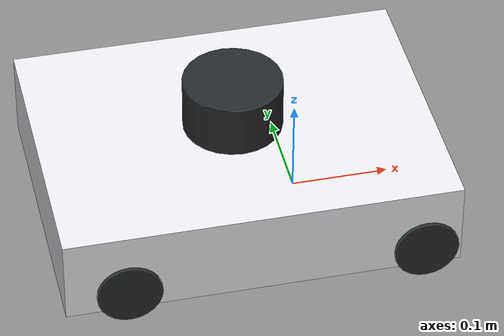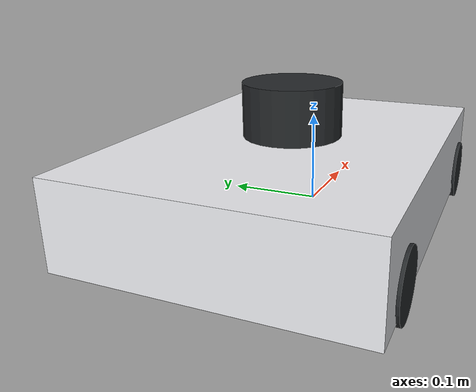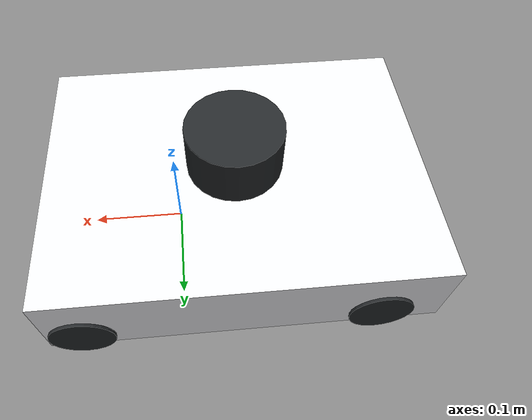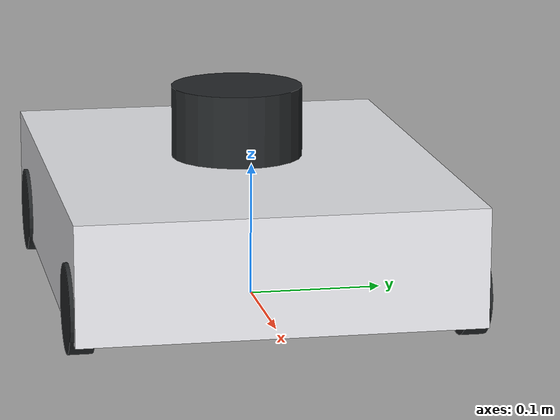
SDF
<sdf version='1.8'>
  <model name="waffle_4wheel">
  <pose>0 0 0 0 0 0</pose>

    <link name="base_footprint"/>

    <link name="base_link">
      <inertial>
        <pose>-0.064 0 0.048 0 0 0</pose>
        <inertia>
          <ixx>4.2111447e-02</ixx>
          <ixy>0</ixy>
          <ixz>0</ixz>
          <iyy>4.2111447e-02</iyy>
          <iyz>0</iyz>
          <izz>7.5254874e-02</izz>
        </inertia>
        <mass>1.3729096e+00</mass>
      </inertial>
      <collision name="base_collision">
        <pose>-0.064 0 0.048 0 0 0</pose>
        <geometry>
          <box>
            <size>0.400 0.300 0.089</size>
          </box>
        </geometry>
      </collision>
      <visual name="base_visual">
        <pose>-0.064 0 0.048 0 0 0</pose>
        <geometry>
          <box>
            <size>0.400 0.300 0.089</size>
          </box>
        </geometry>
        <material>
          <diffuse>0.921568627 0.925490196 0.941176471 1</diffuse>
          <ambient>0.921568627 0.925490196 0.941176471 1</ambient>
          <specular>0.921568627 0.925490196 0.941176471 1</specular>
        </material>
      </visual>
    </link>

    <joint name="base_joint" type="fixed">
      <pose>0 0 0.01 0 0 0</pose>
      <parent>base_footprint</parent>
      <child>base_link</child>
    </joint>

    <!-- IMU -->
    <link name="imu_link">
      <sensor name="imu" type="imu">
        <always_on>1</always_on>
        <update_rate>200</update_rate>
        <visualize>true</visualize>
        <topic>imu</topic>
        <ignition_frame_id>imu_link</ignition_frame_id>
        <imu>
          <angular_velocity>
            <x>
              <noise type="gaussian">
                <mean>0.0</mean>
                <stddev>2e-4</stddev>
              </noise>
            </x>
            <y>
              <noise type="gaussian">
                <mean>0.0</mean>
                <stddev>2e-4</stddev>
              </noise>
            </y>
            <z>
              <noise type="gaussian">
                <mean>0.0</mean>
                <stddev>2e-4</stddev>
              </noise>
            </z>
          </angular_velocity>
          <linear_acceleration>
            <x>
              <noise type="gaussian">
                <mean>0.0</mean>
                <stddev>1.7e-2</stddev>
              </noise>
            </x>
            <y>
              <noise type="gaussian">
                <mean>0.0</mean>
                <stddev>1.7e-2</stddev>
              </noise>
            </y>
            <z>
              <noise type="gaussian">
                <mean>0.0</mean>
                <stddev>1.7e-2</stddev>
              </noise>
            </z>
          </linear_acceleration>
        </imu>
      </sensor>
    </link>
    <joint name="imu_joint" type="fixed">
      <pose>-0.032 0 0.068 0 0 0</pose>
      <parent>base_link</parent>
      <child>imu_link</child>
    </joint>

    <!-- LIDAR -->
    <link name="base_scan">
      <inertial>
        <pose>-0.052 0 0.111 0 0 0</pose>
        <inertia>
          <ixx>0.001</ixx>
          <ixy>0</ixy>
          <ixz>0</ixz>
          <iyy>0.001</iyy>
          <iyz>0</iyz>
          <izz>0.001</izz>
        </inertia>
        <mass>0.114</mass>
      </inertial>
      <collision name="lidar_sensor_collision">
        <pose>-0.052 0 0.111 0 0 0</pose>
        <geometry>
          <cylinder>
            <radius>0.0508</radius>
            <length>0.055</length>
          </cylinder>
        </geometry>
      </collision>
      <visual name="lidar_sensor_visual">
        <pose>-0.064 0 0.121 0 0 0</pose>
        <geometry>
          <cylinder>
            <radius>0.0508</radius>
            <length>0.055</length>
          </cylinder>
        </geometry>
        <material>
          <diffuse>0.145098039 0.156862745 0.164705882 1</diffuse>
          <ambient>0.145098039 0.156862745 0.164705882 1</ambient>
          <specular>0.145098039 0.156862745 0.164705882 1</specular>
        </material>
      </visual>
      <sensor name="gpu_lidar" type="gpu_lidar">
        <pose>-0.064 0 0.121 0 0 0</pose>
        <topic>scan</topic>
        <ignition_frame_id>base_scan</ignition_frame_id>
        <update_rate>5</update_rate>
        <visualize>true</visualize>  <!-- Make sure visualization is enabled -->
        <ray>
          <scan>
            <horizontal>
              <samples>360</samples>
              <resolution>1</resolution>
              <min_angle>0</min_angle>
              <max_angle>6.28</max_angle>
            </horizontal>
          </scan>
          <range>
            <min>0.120000</min>
            <max>20.0</max>
            <resolution>0.015000</resolution>
          </range>
          <noise>
            <type>gaussian</type>
            <mean>0.0</mean>
            <stddev>0.01</stddev>
          </noise>
        </ray>
        <always_on>true</always_on>
        <visualize>1</visualize>
      </sensor>
    </link>
    <joint name="lidar_joint" type="fixed">
      <pose>-0.064 0 0.121 0 0 0</pose>
      <parent>base_link</parent>
      <child>base_scan</child>
    </joint>

    <!-- Front Left Wheel -->
    <link name="wheel_front_left_link">
      <inertial>
        <pose>0.1 0.144 0.023 -1.57 0 0</pose>
        <inertia>
          <ixx>1.1175580e-05</ixx>
          <ixy>-4.2369783e-11</ixy>
          <ixz>-5.9381719e-09</ixz>
          <iyy>1.1192413e-05</iyy>
          <iyz>-1.4400107e-11</iyz>
          <izz>2.0712558e-05</izz>
        </inertia>
        <mass>0.1</mass>
      </inertial>
      <collision name="wheel_front_left_collision">
        <pose>0.1 0.144 0.023 -1.57 0 0</pose>
        <geometry>
          <cylinder>
            <radius>0.033</radius>
            <length>0.018</length>
          </cylinder>
        </geometry>
        <surface>
          <friction>
            <ode>
              <mu>100000.0</mu>
              <mu2>100000.0</mu2>
              <fdir1>0 0 0</fdir1>
              <slip1>0.0</slip1>
              <slip2>0.0</slip2>
            </ode>
          </friction>
          <contact>
            <ode>
              <soft_cfm>0</soft_cfm>
              <soft_erp>0.2</soft_erp>
              <kp>1e+5</kp>
              <kd>1</kd>
              <max_vel>0.01</max_vel>
              <min_depth>0.001</min_depth>
            </ode>
          </contact>
        </surface>
      </collision>
      <visual name="wheel_front_left_visual">
        <pose>0.1 0.144 0.023 -1.57 0 0</pose>
        <geometry>
          <cylinder>
            <radius>0.033</radius>
            <length>0.018</length>
          </cylinder>
        </geometry>
        <material>
          <diffuse>0.145098039 0.156862745 0.164705882 1</diffuse>
          <ambient>0.145098039 0.156862745 0.164705882 1</ambient>
          <specular>0.145098039 0.156862745 0.164705882 1</specular>
        </material>
      </visual>
    </link>
    <joint name="wheel_front_left_joint" type="revolute">
      <parent>base_link</parent>
      <child>wheel_front_left_link</child>
      <pose>0.1 0.144 0.023 -1.57 0 0</pose>
      <axis>
        <xyz>0 0 1</xyz>
      </axis>
    </joint>

    <!-- Front Right Wheel -->
    <link name="wheel_front_right_link">
      <inertial>
        <pose>0.1 -0.144 0.023 -1.57 0 0</pose>
        <inertia>
          <ixx>1.1175580e-05</ixx>
          <ixy>-4.2369783e-11</ixy>
          <ixz>-5.9381719e-09</ixz>
          <iyy>1.1192413e-05</iyy>
          <iyz>-1.4400107e-11</iyz>
          <izz>2.0712558e-05</izz>
        </inertia>
        <mass>0.1</mass>
      </inertial>
      <collision name="wheel_front_right_collision">
        <pose>0.1 -0.144 0.023 -1.57 0 0</pose>
        <geometry>
          <cylinder>
            <radius>0.033</radius>
            <length>0.018</length>
          </cylinder>
        </geometry>
        <surface>
          <friction>
            <ode>
              <mu>100000.0</mu>
              <mu2>100000.0</mu2>
              <fdir1>0 0 0</fdir1>
              <slip1>0.0</slip1>
              <slip2>0.0</slip2>
            </ode>
          </friction>
          <contact>
            <ode>
              <soft_cfm>0</soft_cfm>
              <soft_erp>0.2</soft_erp>
              <kp>1e+5</kp>
              <kd>1</kd>
              <max_vel>0.01</max_vel>
              <min_depth>0.001</min_depth>
            </ode>
          </contact>
        </surface>
      </collision>
      <visual name="wheel_front_right_visual">
        <pose>0.1 -0.144 0.023 -1.57 0 0</pose>
        <geometry>
          <cylinder>
            <radius>0.033</radius>
            <length>0.018</length>
          </cylinder>
        </geometry>
        <material>
          <diffuse>0.145098039 0.156862745 0.164705882 1</diffuse>
          <ambient>0.145098039 0.156862745 0.164705882 1</ambient>
          <specular>0.145098039 0.156862745 0.164705882 1</specular>
        </material>
      </visual>
    </link>
    <joint name="wheel_front_right_joint" type="revolute">
      <parent>base_link</parent>
      <child>wheel_front_right_link</child>
      <pose>0.1 -0.144 0.023 -1.57 0 0</pose>
      <axis>
        <xyz>0 0 1</xyz>
      </axis>
    </joint>

    <!-- Rear Left Wheel -->
    <link name="wheel_rear_left_link">
      <inertial>
        <pose>-0.2 0.144 0.023 -1.57 0 0</pose>
        <inertia>
          <ixx>1.1175580e-05</ixx>
          <ixy>-4.2369783e-11</ixy>
          <ixz>-5.9381719e-09</ixz>
          <iyy>1.1192413e-05</iyy>
          <iyz>-1.4400107e-11</iyz>
          <izz>2.0712558e-05</izz>
        </inertia>
        <mass>0.1</mass>
      </inertial>
      <collision name="wheel_rear_left_collision">
        <pose>-0.2 0.144 0.023 -1.57 0 0</pose>
        <geometry>
          <cylinder>
            <radius>0.033</radius>
            <length>0.018</length>
          </cylinder>
        </geometry>
        <surface>
          <friction>
            <ode>
              <mu>100000.0</mu>
              <mu2>100000.0</mu2>
              <fdir1>0 0 0</fdir1>
              <slip1>0.0</slip1>
              <slip2>0.0</slip2>
            </ode>
          </friction>
          <contact>
            <ode>
              <soft_cfm>0</soft_cfm>
              <soft_erp>0.2</soft_erp>
              <kp>1e+5</kp>
              <kd>1</kd>
              <max_vel>0.01</max_vel>
              <min_depth>0.001</min_depth>
            </ode>
          </contact>
        </surface>
      </collision>
      <visual name="wheel_rear_left_visual">
        <pose>-0.2 0.144 0.023 -1.57 0 0</pose>
        <geometry>
          <cylinder>
            <radius>0.033</radius>
            <length>0.018</length>
          </cylinder>
        </geometry>
        <material>
          <diffuse>0.145098039 0.156862745 0.164705882 1</diffuse>
          <ambient>0.145098039 0.156862745 0.164705882 1</ambient>
          <specular>0.145098039 0.156862745 0.164705882 1</specular>
        </material>
      </visual>
    </link>
    <joint name="wheel_rear_left_joint" type="revolute">
      <parent>base_link</parent>
      <child>wheel_rear_left_link</child>
      <pose>-0.2 0.144 0.023 -1.57 0 0</pose>
      <axis>
        <xyz>0 0 1</xyz>
      </axis>
    </joint>

    <!-- Rear Right Wheel -->
    <link name="wheel_rear_right_link">
      <inertial>
        <pose>-0.2 -0.144 0.023 -1.57 0 0</pose>
        <inertia>
          <ixx>1.1175580e-05</ixx>
          <ixy>-4.2369783e-11</ixy>
          <ixz>-5.9381719e-09</ixz>
          <iyy>1.1192413e-05</iyy>
          <iyz>-1.4400107e-11</iyz>
          <izz>2.0712558e-05</izz>
        </inertia>
        <mass>0.1</mass>
      </inertial>
      <collision name="wheel_rear_right_collision">
        <pose>-0.2 -0.144 0.023 -1.57 0 0</pose>
        <geometry>
          <cylinder>
            <radius>0.033</radius>
            <length>0.018</length>
          </cylinder>
        </geometry>
        <surface>
          <friction>
            <ode>
              <mu>100000.0</mu>
              <mu2>100000.0</mu2>
              <fdir1>0 0 0</fdir1>
              <slip1>0.0</slip1>
              <slip2>0.0</slip2>
            </ode>
          </friction>
          <contact>
            <ode>
              <soft_cfm>0</soft_cfm>
              <soft_erp>0.2</soft_erp>
              <kp>1e+5</kp>
              <kd>1</kd>
              <max_vel>0.01</max_vel>
              <min_depth>0.001</min_depth>
            </ode>
          </contact>
        </surface>
      </collision>
      <visual name="wheel_rear_right_visual">
        <pose>-0.2 -0.144 0.023 -1.57 0 0</pose>
        <geometry>
          <cylinder>
            <radius>0.033</radius>
            <length>0.018</length>
          </cylinder>
        </geometry>
        <material>
          <diffuse>0.145098039 0.156862745 0.164705882 1</diffuse>
          <ambient>0.145098039 0.156862745 0.164705882 1</ambient>
          <specular>0.145098039 0.156862745 0.164705882 1</specular>
        </material>
      </visual>
    </link>
    <joint name="wheel_rear_right_joint" type="revolute">
      <parent>base_link</parent>
      <child>wheel_rear_right_link</child>
      <pose>-0.2 -0.144 0.023 -1.57 0 0</pose>
      <axis>
        <xyz>0 0 1</xyz>
      </axis>
    </joint>

    <link name="camera_link"/>
    <joint name="camera_joint" type="fixed">
      <parent>base_link</parent>
      <child>camera_link</child>
      <pose>0.064 -0.065 0.094 0 0 0</pose>
      <axis>
        <xyz>0 0 1</xyz>
      </axis>
    </joint>

    <link name="camera_rgb_frame">
      <inertial>
        <pose>0.069 -0.047 0.107 0 0 0</pose>
        <inertia>
          <ixx>0.001</ixx>
          <ixy>0.000</ixy>
          <ixz>0.000</ixz>
          <iyy>0.001</iyy>
          <iyz>0.000</iyz>
          <izz>0.001</izz>
        </inertia>
        <mass>0.035</mass>
      </inertial>
      <pose>0.069 -0.047 0.107 0 0 0</pose>
      <sensor name="camera" type="camera">
        <always_on>true</always_on>
        <visualize>true</visualize>
        <update_rate>30</update_rate>
        <camera_info_topic>/camera/rgb/camera_info</camera_info_topic>
        <topic>/camera/rgb/image_raw</topic>
        <ignition_frame_id>camera_rgb_frame</ignition_frame_id>
        <camera name="intel_realsense_r200">
          <horizontal_fov>1.02974</horizontal_fov>
          <image>
            <width>1920</width>
            <height>1080</height>
            <format>R8G8B8</format>
          </image>
          <clip>
            <near>0.02</near>
            <far>300</far>
          </clip>
          <noise>
            <type>gaussian</type>
            <mean>0.0</mean>
            <stddev>0.007</stddev>
          </noise>
        </camera>
      </sensor>
    </link>
    <joint name="camera_rgb_joint" type="fixed">
      <parent>camera_link</parent>
      <child>camera_rgb_frame</child>
      <pose>0.005 0.018 0.013 0 0 0</pose>
      <axis>
        <xyz>0 0 1</xyz>
      </axis>
    </joint>

    <!-- Global odometer -->
    <plugin
      filename="ignition-gazebo-odometry-publisher-system"
      name="ignition::gazebo::systems::OdometryPublisher">
      <odom_publish_frequency>50</odom_publish_frequency>
      <odom_topic>/odom</odom_topic>
      <odom_frame>odom</odom_frame>
      <robot_base_frame>base_footprint</robot_base_frame>
      <tf_topic>/odom/tf</tf_topic>
    </plugin>

    <!-- Differential drive -->
    <plugin filename="libignition-gazebo-diff-drive-system.so"
      name="ignition::gazebo::systems::DiffDrive">
      <left_joint>wheel_rear_left_joint</left_joint>
      <right_joint>wheel_rear_right_joint</right_joint>
      <left_joint>wheel_front_left_joint</left_joint>
      <right_joint>wheel_front_right_joint</right_joint>
      <wheel_separation>0.287</wheel_separation>
      <wheel_radius>0.033</wheel_radius>
      <topic>cmd_vel</topic>
    </plugin>

    <!-- Joint state publisher -->
    <plugin filename="libignition-gazebo-joint-state-publisher-system.so"
      name="ignition::gazebo::systems::JointStatePublisher">
      <topic>joint_states</topic>
    </plugin>

  </model>
</sdf>
